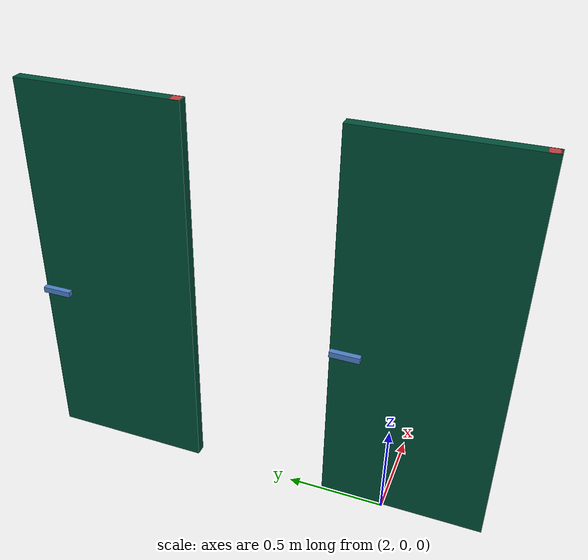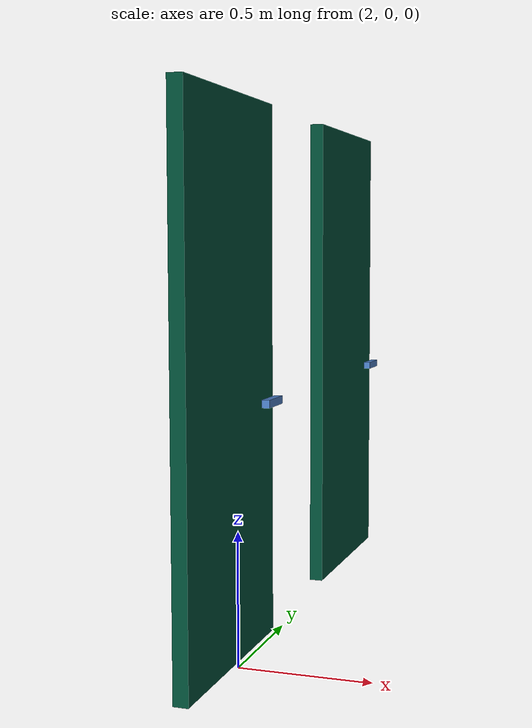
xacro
<?xml version="1.0"?>

<robot name="hsrb_lab" xmlns:xacro="http://ros.org/wiki/xacro">

    <xacro:include filename="$(find suturo_urdf_publisher)/urdf/hsr_movable_door.urdf.xacro"/>

    <xacro:property name="pi" value="3.1415926535897931" />
    <xacro:property name="half_pi" value="1.570796327" />
    <xacro:property name="simulated" value="true" />

    <xacro:property name="data"
    value="${load_yaml('$(find suturo_urdf_publisher)/urdf/yaml/sim_doors_test.yaml')}" />

    <xacro:property name="movable_door_x"
        value="${data['movable_door']['x_pos']}" />
    <xacro:property name="movable_door_y"
        value="${data['movable_door']['y_pos']}" />
    <xacro:property name="movable_door_z_rot"
        value="${data['movable_door']['z_rot']}" />
    <xacro:property name="movable_door_depth"
        value="${data['movable_door']['depth']}" />
    <xacro:property name="movable_door_width"
        value="${data['movable_door']['width']}" />
    <xacro:property name="movable_door_height"
        value="${data['movable_door']['height']}" />

    <xacro:if value="${simulated}">
        <link name="world"/>
        <joint name="world_room_joint" type="fixed">
            <origin xyz="0.0 0.0 0 " rpy="0 0 0" />
            <parent link="world"/>
            <child link="room_link"/>
        </joint>
    </xacro:if>

    <link name="room_link" />

    <suturo_movable_door name="door_1" parent="room_link" height="2" width="0.83" depth="0.055" x="1.995590" y="-0.099165" z="1.045" r="0" p="0" yr="${half_pi}" door_lower="${-half_pi}" door_max="${half_pi}" >
    </suturo_movable_door>

    <suturo_movable_door name="door_2" parent="room_link" height="2" width="0.83" depth="0.055"
x="1.983010" y="1.43728" z="1.045" r="0" p="0" yr="${half_pi}" door_lower="${-half_pi}" door_max="${half_pi}">
    </suturo_movable_door>

</robot>

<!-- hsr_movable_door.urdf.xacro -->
<robot name="suturo_movable_door" xmlns:xacro="http://ros.org/wiki/xacro">

  <material name="door_green">
    <color rgba="0 0.31 0.22 1"/>
  </material>

  <material name="hinge_red">
    <color rgba="0.74 0.25 0.25 1"/>
  </material>

  <material name="handle_blue">
    <color rgba="0.3 0.5 0.78 1"/>
  </material>
  <xacro:property name="pi" value="3.1415926535897931" />
  <xacro:property name="half_pi" value="1.570796327" />

  <macro name="suturo_movable_door" params="name parent height width depth x y z r p yr door_lower door_max">
    <!-- LINKS -->

    <link name="${name}_center">
      <visual>
        <material name="door_green"/>
        <origin xyz="${width/2} ${depth/2} 0" rpy="0 0 0" />
        <geometry>
          <box size="${width} ${depth} ${height}" />
        </geometry>
      </visual>
      <collision>
        <origin xyz="${width/2} ${depth/2} 0" rpy="0 0 0" />
        <geometry>
          <box size="${width} ${depth} ${height}" />
        </geometry>
      </collision>
    </link>

    <link name="${name}_hinge">
      <visual>
        <material name="hinge_red"/>
        <origin xyz="0 ${depth/2} 0" rpy="0 0 0" />
        <geometry>
          <box size="0.05 0.05 ${height}" />
        </geometry>
      </visual>
      <collision>
        <origin xyz="0 ${depth/2} 0" rpy="0 0 0" />
        <geometry>-
          <box size="0.05 0.05 ${height}" />
        </geometry>
      </collision>
    </link>

    <link name="${name}_handle_outside">

      <sphere_inertia radius="0" mass="0"/>
      <visual>
	<material name="handle_blue"/>
        <origin xyz="0 0 0" rpy="${half_pi} 0 ${pi}" />
        <geometry>-
          <box size="0.15 0.03 0.03" />
        </geometry>
      </visual>
      <collision>
        <origin xyz="0 0 0" rpy="${half_pi} 0 ${pi}" />
        <geometry>
          <box size="0.15 0.03 0.03" />
        </geometry>
      </collision>
    </link>

    <link name="${name}_handle_inside">

      <sphere_inertia radius="0" mass="0"/>
      <visual>
	<material name="handle_blue"/>
        <origin xyz="0 0 0" rpy="${half_pi} 0 ${pi}" />
        <geometry>-
          <box size="0.15 0.03 0.03" />
        </geometry>
      </visual>
      <collision>
        <origin xyz="0 0 0" rpy="${half_pi} 0 ${pi}" />
        <geometry>
          <box size="0.15 0.03 0.03" />
        </geometry>
      </collision>
    </link>

    <!-- JOINTS -->

    <joint name="${name}_origin_revolute_joint" type="revolute">
      <axis xyz="0 0 1"/>
      <limit effort="100" lower="${door_lower}" upper="${door_max}" velocity="10"/>
      <origin xyz="${depth/2} 0 0" rpy="0 0 ${yr}" />
      <parent link="${name}_hinge"/>
      <child link="${name}_center"/>
    </joint>

    <joint name="${name}_hinge_joint" type="fixed">
      <axis xyz="0 0 0"/>
      <limit effort="1" lower="0" upper="1.5708" velocity="1"/>
      <origin xyz="${x} ${y - 0.415} ${z}" rpy="0 0 0" />
      <parent link="${parent}"/>
      <child link="${name}_hinge"/>
    </joint>

    <joint name="${name}_handle_inside_joint" type="fixed">
      <axis xyz="0 0 0"/>
      <limit effort="1" lower="0" upper="1.5708" velocity="1"/>
      <origin xyz="${0.9 * width} ${-0.5 * depth} -0.1" rpy="0 0 0" />
      <parent link="${name}_center"/>
      <child link="${name}_handle_inside"/>
    </joint>

    <joint name="${name}_handle_outside_joint" type="fixed">
      <axis xyz="0 0 0"/>
      <limit effort="1" lower="0" upper="1.5708" velocity="1"/>
      <origin xyz="${0.9 * width} ${1.5 * depth} -0.1" rpy="0 0 0" />
      <parent link="${name}_center"/>
      <child link="${name}_handle_outside"/>
    </joint>

  </macro>
</robot>
